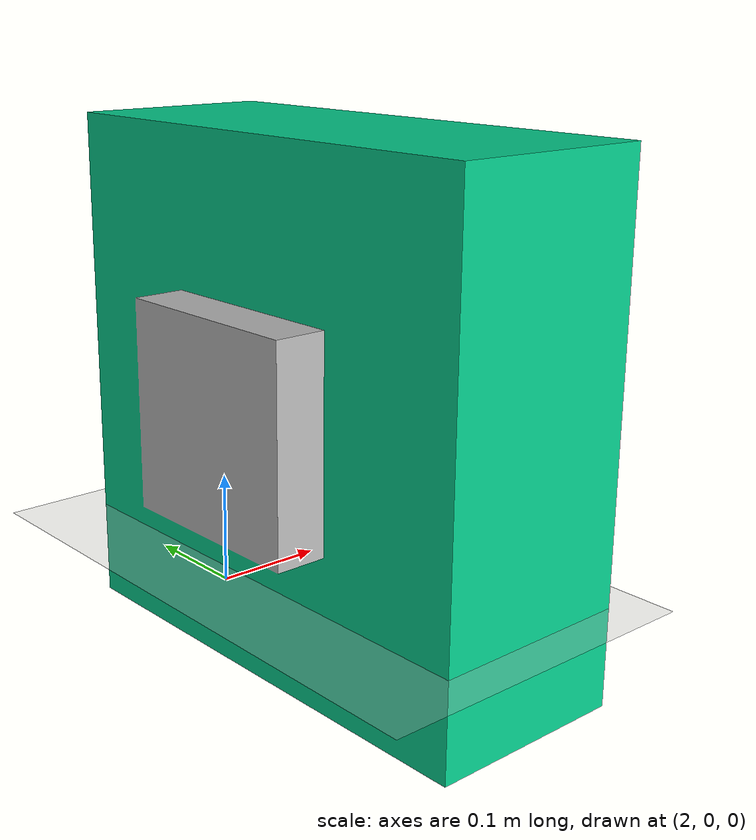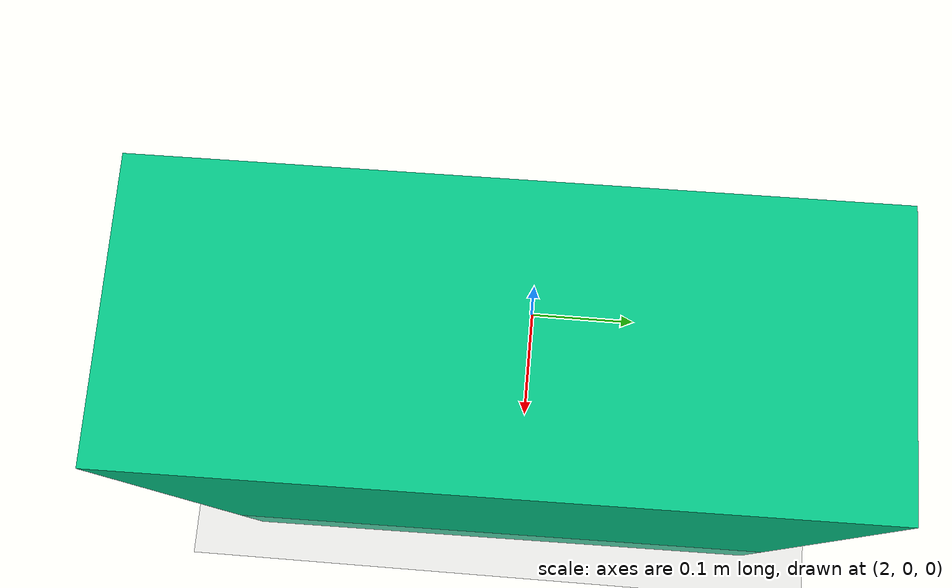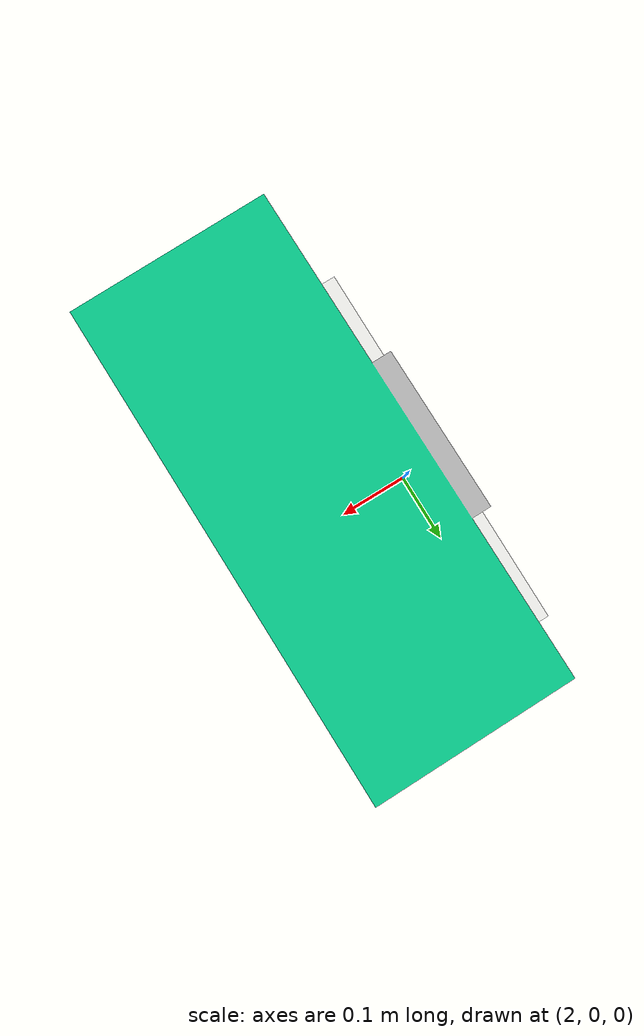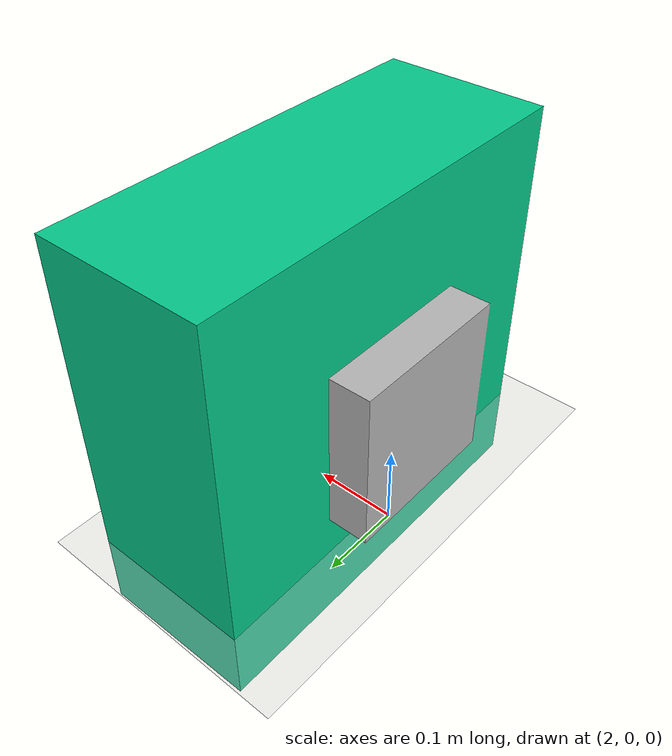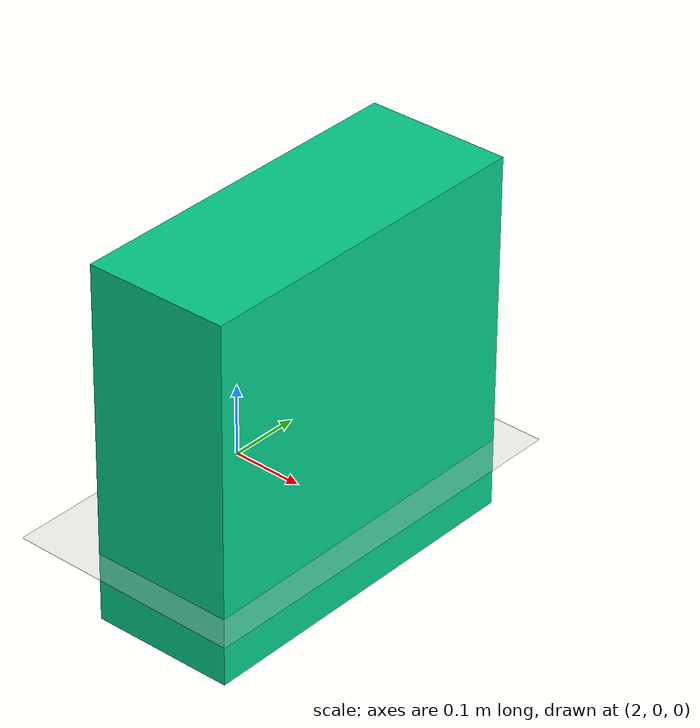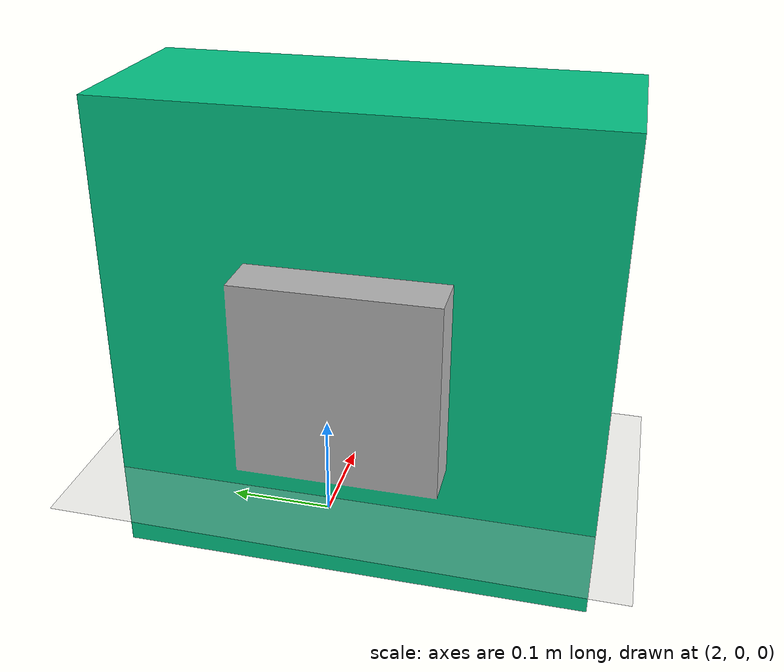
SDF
<sdf version="1.7">
 <world name="default">
  <model name="ground_plane">
   <static>1</static>
   <link name="link">
    <collision name="collision">
     <geometry><plane><normal>0 0 1</normal><size>100 100</size></plane></geometry>
     <surface><friction><ode><mu>100</mu><mu2>50</mu2></ode></friction></surface>
    </collision>
    <visual name="visual">
     <cast_shadows>0</cast_shadows>
     <geometry><plane><normal>0 0 1</normal><size>100 100</size></plane></geometry>
     <material>
      <script><uri>file://media/materials/scripts/gazebo.material</uri><name>Gazebo/Grey</name></script>
     </material>
    </visual>
   </link>
  </model>
  <gravity>0 0 -9.8</gravity>
  <magnetic_field>6e-06 2.3e-05 -4.2e-05</magnetic_field>
  <atmosphere type="adiabatic"/>
  <physics type="ode">
   <max_step_size>0.001</max_step_size>
   <real_time_factor>1</real_time_factor>
   <real_time_update_rate>1000</real_time_update_rate>
  </physics>
  <scene><ambient>0.4 0.4 0.4 1</ambient><background>0.7 0.7 0.7 1</background><shadows>1</shadows></scene>
  <audio><device>default</device></audio>
  <spherical_coordinates>
   <surface_model>EARTH_WGS84</surface_model>
   <latitude_deg>0</latitude_deg>
   <longitude_deg>0</longitude_deg>
   <elevation>0</elevation>
   <heading_deg>0</heading_deg>
  </spherical_coordinates>
  <light name="sun" type="directional">
   <pose>0.072666 -0.079541 10 0 -0 0</pose>
   <diffuse>0.8 0.8 0.8 1</diffuse>
   <specular>0.2 0.2 0.2 1</specular>
   <attenuation>
    <range>1000</range>
    <constant>0.9</constant>
    <linear>0.01</linear>
    <quadratic>0.001</quadratic>
   </attenuation>
   <direction>-0.5 0.1 -0.9</direction>
   <spot><inner_angle>0</inner_angle><outer_angle>0</outer_angle><falloff>0</falloff></spot>
  </light>
  <model name="apriltag_36h11_7">
   <link name="main">
    <visual name="tag_viz">
     <geometry>
      <mesh>
       <scale>1 1 1</scale>
       <uri>/home/makarand/.gazebo/models/apriltag_block/meshes/apriltag_36h11_7.dae</uri>
      </mesh>
     </geometry>
    </visual>
    <collision name="tag_block_collision"><geometry><box><size>0.2 0.5 0.5</size></box></geometry></collision>
   </link>
   <static>1</static>
   <pose>2.11762 -0.014745 0.153519 0 0 -3.13206</pose>
  </model>
 </world>
</sdf>
